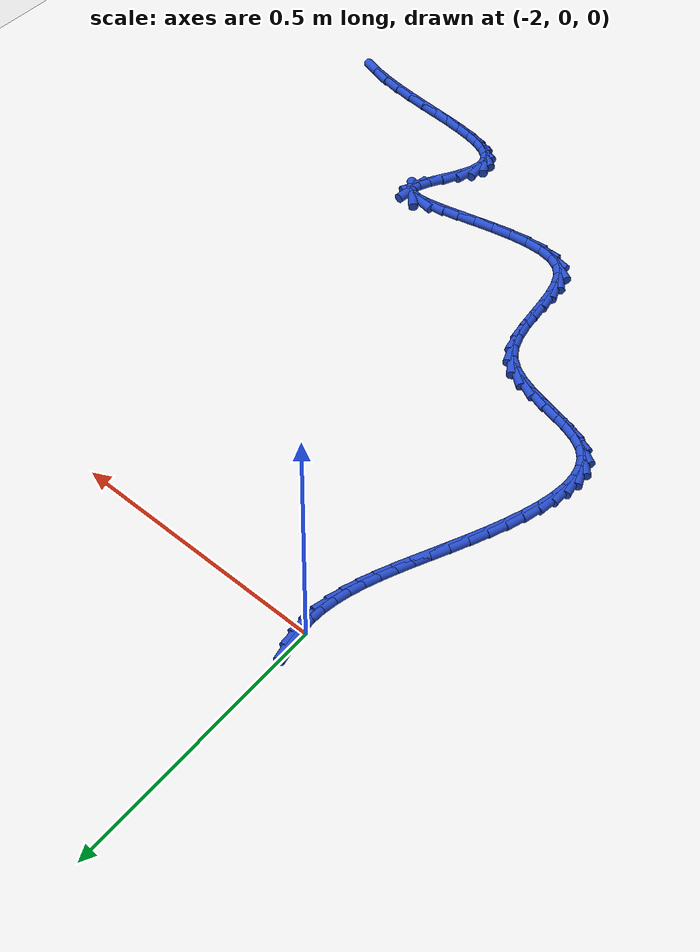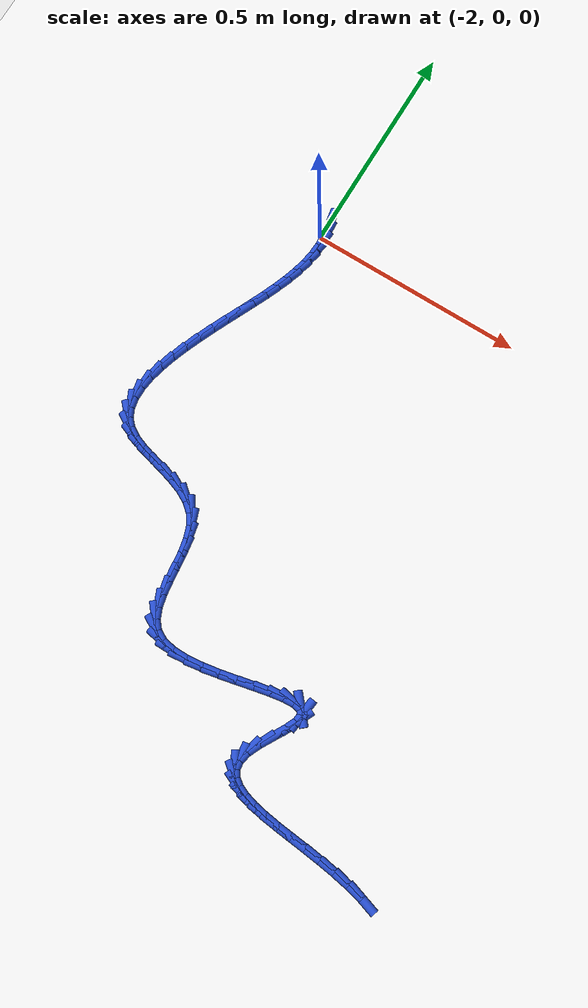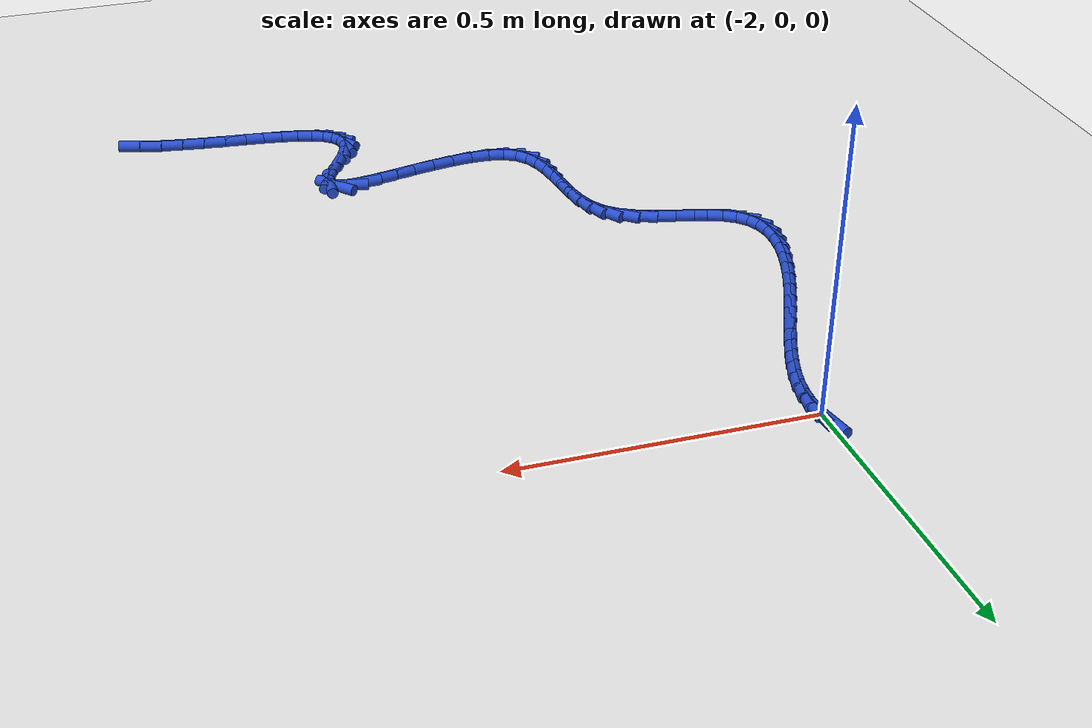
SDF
<sdf version="1.6">
 <world name="default">
  <model name="ground_plane">
   <static>1</static>
   <link name="link">
    <collision name="collision">
     <geometry><plane><normal>0 0 1</normal><size>100 100</size></plane></geometry>
     <surface><friction><ode><mu>100</mu><mu2>50</mu2></ode></friction></surface>
    </collision>
    <visual name="visual">
     <cast_shadows>0</cast_shadows>
     <geometry><plane><normal>0 0 1</normal><size>100 100</size></plane></geometry>
     <material>
      <script><uri>file://media/materials/scripts/gazebo.material</uri><name>Gazebo/WhiteGlow</name></script>
     </material>
    </visual>
   </link>
  </model>
  <model name="line">
   <link name="link_143">
    <pose>-1.9962763031443065 0.031514591158086844 0.01 0 1.57 -1.3799624518939744</pose>
    <collision name="collision">
     <geometry><cylinder><radius>0.01</radius><length>0.08</length></cylinder></geometry>
    </collision>
    <visual name="visual">
     <material>
      <script><name>Gazebo/Blue</name><uri>file://media/materials/scripts/gazebo.material</uri></script>
     </material>
     <geometry><cylinder><radius>0.01</radius><length>0.08</length></cylinder></geometry>
    </visual>
   </link>
   <link name="link_144">
    <pose>-1.9912921864584656 0.005714841771516518 0.01 0 1.57 -1.5122111269956504</pose>
    <collision name="collision">
     <geometry><cylinder><radius>0.01</radius><length>0.08</length></cylinder></geometry>
    </collision>
    <visual name="visual">
     <material>
      <script><name>Gazebo/Blue</name><uri>file://media/materials/scripts/gazebo.material</uri></script>
     </material>
     <geometry><cylinder><radius>0.01</radius><length>0.08</length></cylinder></geometry>
    </visual>
   </link>
   <link name="link_145">
    <pose>-1.9897640528298925 -0.020339262914148108 0.01 0 1.57 1.5102431524342177</pose>
    <collision name="collision">
     <geometry><cylinder><radius>0.01</radius><length>0.08</length></cylinder></geometry>
    </collision>
    <visual name="visual">
     <material>
      <script><name>Gazebo/Blue</name><uri>file://media/materials/scripts/gazebo.material</uri></script>
     </material>
     <geometry><cylinder><radius>0.01</radius><length>0.08</length></cylinder></geometry>
    </visual>
   </link>
   <link name="link_146">
    <pose>-1.9913635400704 -0.04672155979089934 0.01 0 1.57 1.4080209900042377</pose>
    <collision name="collision">
     <geometry><cylinder><radius>0.01</radius><length>0.08</length></cylinder></geometry>
    </collision>
    <visual name="visual">
     <material>
      <script><name>Gazebo/Blue</name><uri>file://media/materials/scripts/gazebo.material</uri></script>
     </material>
     <geometry><cylinder><radius>0.01</radius><length>0.08</length></cylinder></geometry>
    </visual>
   </link>
   <link name="link_147">
    <pose>-1.9957622859917983 -0.073505885750727 0.01 0 1.57 1.323933644253018</pose>
    <collision name="collision">
     <geometry><cylinder><radius>0.01</radius><length>0.08</length></cylinder></geometry>
    </collision>
    <visual name="visual">
     <material>
      <script><name>Gazebo/Blue</name><uri>file://media/materials/scripts/gazebo.material</uri></script>
     </material>
     <geometry><cylinder><radius>0.01</radius><length>0.08</length></cylinder></geometry>
    </visual>
   </link>
   <link name="link_148">
    <pose>-2.0026319284059 -0.10076607768562347 0.01 0 1.57 1.2574115343491388</pose>
    <collision name="collision">
     <geometry><cylinder><radius>0.01</radius><length>0.08</length></cylinder></geometry>
    </collision>
    <visual name="visual">
     <material>
      <script><name>Gazebo/Blue</name><uri>file://media/materials/scripts/gazebo.material</uri></script>
     </material>
     <geometry><cylinder><radius>0.01</radius><length>0.08</length></cylinder></geometry>
    </visual>
   </link>
   <link name="link_149">
    <pose>-2.0116441051245166 -0.12857597248758018 0.01 0 1.57 1.2069843277178944</pose>
    <collision name="collision">
     <geometry><cylinder><radius>0.01</radius><length>0.08</length></cylinder></geometry>
    </collision>
    <visual name="visual">
     <material>
      <script><name>Gazebo/Blue</name><uri>file://media/materials/scripts/gazebo.material</uri></script>
     </material>
     <geometry><cylinder><radius>0.01</radius><length>0.08</length></cylinder></geometry>
    </visual>
   </link>
   <link name="link_150">
    <pose>-2.02247045395946 -0.15700940704858868 0.01 0 1.57 1.170917209728556</pose>
    <collision name="collision">
     <geometry><cylinder><radius>0.01</radius><length>0.08</length></cylinder></geometry>
    </collision>
    <visual name="visual">
     <material>
      <script><name>Gazebo/Blue</name><uri>file://media/materials/scripts/gazebo.material</uri></script>
     </material>
     <geometry><cylinder><radius>0.01</radius><length>0.08</length></cylinder></geometry>
    </visual>
   </link>
   <link name="link_151">
    <pose>-2.034782612722541 -0.18614021826064045 0.01 0 1.57 1.147561586208824</pose>
    <collision name="collision">
     <geometry><cylinder><radius>0.01</radius><length>0.08</length></cylinder></geometry>
    </collision>
    <visual name="visual">
     <material>
      <script><name>Gazebo/Blue</name><uri>file://media/materials/scripts/gazebo.material</uri></script>
     </material>
     <geometry><cylinder><radius>0.01</radius><length>0.08</length></cylinder></geometry>
    </visual>
   </link>
   <link name="link_152">
    <pose>-2.048252219225572 -0.216042243015727 0.01 0 1.57 1.1355038349042812</pose>
    <collision name="collision">
     <geometry><cylinder><radius>0.01</radius><length>0.08</length></cylinder></geometry>
    </collision>
    <visual name="visual">
     <material>
      <script><name>Gazebo/Blue</name><uri>file://media/materials/scripts/gazebo.material</uri></script>
     </material>
     <geometry><cylinder><radius>0.01</radius><length>0.08</length></cylinder></geometry>
    </visual>
   </link>
   <link name="link_153">
    <pose>-2.0625509112803644 -0.24678931820583977 0.01 0 1.57 1.1335996855342239</pose>
    <collision name="collision">
     <geometry><cylinder><radius>0.01</radius><length>0.08</length></cylinder></geometry>
    </collision>
    <visual name="visual">
     <material>
      <script><name>Gazebo/Blue</name><uri>file://media/materials/scripts/gazebo.material</uri></script>
     </material>
     <geometry><cylinder><radius>0.01</radius><length>0.08</length></cylinder></geometry>
    </visual>
   </link>
   <link name="link_154">
    <pose>-2.07735032669873 -0.2784552807229702 0.01 0 1.57 1.1409576209304424</pose>
    <collision name="collision">
     <geometry><cylinder><radius>0.01</radius><length>0.08</length></cylinder></geometry>
    </collision>
    <visual name="visual">
     <material>
      <script><name>Gazebo/Blue</name><uri>file://media/materials/scripts/gazebo.material</uri></script>
     </material>
     <geometry><cylinder><radius>0.01</radius><length>0.08</length></cylinder></geometry>
    </visual>
   </link>
   <link name="link_155">
    <pose>-2.0923188348650394 -0.31110725530592764 0.01 0 1.57 1.157192149093695</pose>
    <collision name="collision">
     <geometry><cylinder><radius>0.01</radius><length>0.08</length></cylinder></geometry>
    </collision>
    <visual name="visual">
     <material>
      <script><name>Gazebo/Blue</name><uri>file://media/materials/scripts/gazebo.material</uri></script>
     </material>
     <geometry><cylinder><radius>0.01</radius><length>0.08</length></cylinder></geometry>
    </visual>
   </link>
   <link name="link_156">
    <pose>-2.1070028865285737 -0.34456199045925107 0.01 0 1.57 1.1829414277970234</pose>
    <collision name="collision">
     <geometry><cylinder><radius>0.01</radius><length>0.08</length></cylinder></geometry>
    </collision>
    <visual name="visual">
     <material>
      <script><name>Gazebo/Blue</name><uri>file://media/materials/scripts/gazebo.material</uri></script>
     </material>
     <geometry><cylinder><radius>0.01</radius><length>0.08</length></cylinder></geometry>
    </visual>
   </link>
   <link name="link_157">
    <pose>-2.1207934676672737 -0.378316966972747 0.01 0 1.57 1.2197999441622005</pose>
    <collision name="collision">
     <geometry><cylinder><radius>0.01</radius><length>0.08</length></cylinder></geometry>
    </collision>
    <visual name="visual">
     <material>
      <script><name>Gazebo/Blue</name><uri>file://media/materials/scripts/gazebo.material</uri></script>
     </material>
     <geometry><cylinder><radius>0.01</radius><length>0.08</length></cylinder></geometry>
    </visual>
   </link>
   <link name="link_158">
    <pose>-2.133071462101328 -0.4118489195032418 0.01 0 1.57 1.2706711342199997</pose>
    <collision name="collision">
     <geometry><cylinder><radius>0.01</radius><length>0.08</length></cylinder></geometry>
    </collision>
    <visual name="visual">
     <material>
      <script><name>Gazebo/Blue</name><uri>file://media/materials/scripts/gazebo.material</uri></script>
     </material>
     <geometry><cylinder><radius>0.01</radius><length>0.08</length></cylinder></geometry>
    </visual>
   </link>
   <link name="link_159">
    <pose>-2.143217753650927 -0.44463458270756195 0.01 0 1.57 1.340309530448115</pose>
    <collision name="collision">
     <geometry><cylinder><radius>0.01</radius><length>0.08</length></cylinder></geometry>
    </collision>
    <visual name="visual">
     <material>
      <script><name>Gazebo/Blue</name><uri>file://media/materials/scripts/gazebo.material</uri></script>
     </material>
     <geometry><cylinder><radius>0.01</radius><length>0.08</length></cylinder></geometry>
    </visual>
   </link>
   <link name="link_160">
    <pose>-2.1506132261362576 -0.47615069124253406 0.01 0 1.57 1.4361816100632319</pose>
    <collision name="collision">
     <geometry><cylinder><radius>0.01</radius><length>0.08</length></cylinder></geometry>
    </collision>
    <visual name="visual">
     <material>
      <script><name>Gazebo/Blue</name><uri>file://media/materials/scripts/gazebo.material</uri></script>
     </material>
     <geometry><cylinder><radius>0.01</radius><length>0.08</length></cylinder></geometry>
    </visual>
   </link>
   <link name="link_161">
    <pose>-2.15463876337751 -0.5058739797649842 0.01 0 1.57 1.5694650783787067</pose>
    <collision name="collision">
     <geometry><cylinder><radius>0.01</radius><length>0.08</length></cylinder></geometry>
    </collision>
    <visual name="visual">
     <material>
      <script><name>Gazebo/Blue</name><uri>file://media/materials/scripts/gazebo.material</uri></script>
     </material>
     <geometry><cylinder><radius>0.01</radius><length>0.08</length></cylinder></geometry>
    </visual>
   </link>
   <link name="link_162">
    <pose>-2.1546752491948715 -0.5332811829317391 0.01 0 1.57 -1.3868167335781936</pose>
    <collision name="collision">
     <geometry><cylinder><radius>0.01</radius><length>0.08</length></cylinder></geometry>
    </collision>
    <visual name="visual">
     <material>
      <script><name>Gazebo/Blue</name><uri>file://media/materials/scripts/gazebo.material</uri></script>
     </material>
     <geometry><cylinder><radius>0.01</radius><length>0.08</length></cylinder></geometry>
    </visual>
   </link>
   <link name="link_163">
    <pose>-2.1501035674085323 -0.557849035399625 0.01 0 1.57 -1.1379247200459208</pose>
    <collision name="collision">
     <geometry><cylinder><radius>0.01</radius><length>0.08</length></cylinder></geometry>
    </collision>
    <visual name="visual">
     <material>
      <script><name>Gazebo/Blue</name><uri>file://media/materials/scripts/gazebo.material</uri></script>
     </material>
     <geometry><cylinder><radius>0.01</radius><length>0.08</length></cylinder></geometry>
    </visual>
   </link>
   <link name="link_164">
    <pose>-2.1403046018386798 -0.5790542718254692 0.01 0 1.57 -0.8361602571646246</pose>
    <collision name="collision">
     <geometry><cylinder><radius>0.01</radius><length>0.08</length></cylinder></geometry>
    </collision>
    <visual name="visual">
     <material>
      <script><name>Gazebo/Blue</name><uri>file://media/materials/scripts/gazebo.material</uri></script>
     </material>
     <geometry><cylinder><radius>0.01</radius><length>0.08</length></cylinder></geometry>
    </visual>
   </link>
   <link name="link_165">
    <pose>-2.1246596822382173 -0.5963739839282473 0.01 0 1.57 -0.5518134535876208</pose>
    <collision name="collision">
     <geometry><cylinder><radius>0.01</radius><length>0.08</length></cylinder></geometry>
    </collision>
    <visual name="visual">
     <material>
      <script><name>Gazebo/Blue</name><uri>file://media/materials/scripts/gazebo.material</uri></script>
     </material>
     <geometry><cylinder><radius>0.01</radius><length>0.08</length></cylinder></geometry>
    </visual>
   </link>
   <link name="link_166">
    <pose>-2.103043973653063 -0.6096806815842879 0.01 0 1.57 -0.37421000908732027</pose>
    <collision name="collision">
     <geometry><cylinder><radius>0.01</radius><length>0.08</length></cylinder></geometry>
    </collision>
    <visual name="visual">
     <material>
      <script><name>Gazebo/Blue</name><uri>file://media/materials/scripts/gazebo.material</uri></script>
     </material>
     <geometry><cylinder><radius>0.01</radius><length>0.08</length></cylinder></geometry>
    </visual>
   </link>
   <link name="link_167">
    <pose>-2.076770897299272 -0.6199984987288609 0.01 0 1.57 -0.28376980396767204</pose>
    <collision name="collision">
     <geometry><cylinder><radius>0.01</radius><length>0.08</length></cylinder></geometry>
    </collision>
    <visual name="visual">
     <material>
      <script><name>Gazebo/Blue</name><uri>file://media/materials/scripts/gazebo.material</uri></script>
     </material>
     <geometry><cylinder><radius>0.01</radius><length>0.08</length></cylinder></geometry>
    </visual>
   </link>
   <link name="link_168">
    <pose>-2.047414273524552 -0.62856007311677 0.01 0 1.57 -0.2547539694324992</pose>
    <collision name="collision">
     <geometry><cylinder><radius>0.01</radius><length>0.08</length></cylinder></geometry>
    </collision>
    <visual name="visual">
     <material>
      <script><name>Gazebo/Blue</name><uri>file://media/materials/scripts/gazebo.material</uri></script>
     </material>
     <geometry><cylinder><radius>0.01</radius><length>0.08</length></cylinder></geometry>
    </visual>
   </link>
   <link name="link_169">
    <pose>-2.0165479226766103 -0.6365980425028173 0.01 0 1.57 -0.2766888308140119</pose>
    <collision name="collision">
     <geometry><cylinder><radius>0.01</radius><length>0.08</length></cylinder></geometry>
    </collision>
    <visual name="visual">
     <material>
      <script><name>Gazebo/Blue</name><uri>file://media/materials/scripts/gazebo.material</uri></script>
     </material>
     <geometry><cylinder><radius>0.01</radius><length>0.08</length></cylinder></geometry>
    </visual>
   </link>
   <link name="link_170">
    <pose>-1.9857456651031558 -0.6453450446418062 0.01 0 1.57 -0.3512960754035963</pose>
    <collision name="collision">
     <geometry><cylinder><radius>0.01</radius><length>0.08</length></cylinder></geometry>
    </collision>
    <visual name="visual">
     <material>
      <script><name>Gazebo/Blue</name><uri>file://media/materials/scripts/gazebo.material</uri></script>
     </material>
     <geometry><cylinder><radius>0.01</radius><length>0.08</length></cylinder></geometry>
    </visual>
   </link>
   <link name="link_171">
    <pose>-1.9565813211518959 -0.6560337172885393 0.01 0 1.57 -0.4906047438406072</pose>
    <collision name="collision">
     <geometry><cylinder><radius>0.01</radius><length>0.08</length></cylinder></geometry>
    </collision>
    <visual name="visual">
     <material>
      <script><name>Gazebo/Blue</name><uri>file://media/materials/scripts/gazebo.material</uri></script>
     </material>
     <geometry><cylinder><radius>0.01</radius><length>0.08</length></cylinder></geometry>
    </visual>
   </link>
   <link name="link_172">
    <pose>-1.9306287111705374 -0.6698966981978194 0.01 0 1.57 -0.7120676570184888</pose>
    <collision name="collision">
     <geometry><cylinder><radius>0.01</radius><length>0.08</length></cylinder></geometry>
    </collision>
    <visual name="visual">
     <material>
      <script><name>Gazebo/Blue</name><uri>file://media/materials/scripts/gazebo.material</uri></script>
     </material>
     <geometry><cylinder><radius>0.01</radius><length>0.08</length></cylinder></geometry>
    </visual>
   </link>
   <link name="link_173">
    <pose>-1.9094616555067896 -0.6881666251244506 0.01 0 1.57 -0.9996607174795227</pose>
    <collision name="collision">
     <geometry><cylinder><radius>0.01</radius><length>0.08</length></cylinder></geometry>
    </collision>
    <visual name="visual">
     <material>
      <script><name>Gazebo/Blue</name><uri>file://media/materials/scripts/gazebo.material</uri></script>
     </material>
     <geometry><cylinder><radius>0.01</radius><length>0.08</length></cylinder></geometry>
    </visual>
   </link>
   <link name="link_174">
    <pose>-1.8942967705728366 -0.7117669184592839 0.01 0 1.57 -1.2301454766727267</pose>
    <collision name="collision">
     <geometry><cylinder><radius>0.01</radius><length>0.08</length></cylinder></geometry>
    </collision>
    <visual name="visual">
     <material>
      <script><name>Gazebo/Blue</name><uri>file://media/materials/scripts/gazebo.material</uri></script>
     </material>
     <geometry><cylinder><radius>0.01</radius><length>0.08</length></cylinder></geometry>
    </visual>
   </link>
   <link name="link_175">
    <pose>-1.8843334114611496 -0.7398747350007299 0.01 0 1.57 -1.372355714762874</pose>
    <collision name="collision">
     <geometry><cylinder><radius>0.01</radius><length>0.08</length></cylinder></geometry>
    </collision>
    <visual name="visual">
     <material>
      <script><name>Gazebo/Blue</name><uri>file://media/materials/scripts/gazebo.material</uri></script>
     </material>
     <geometry><cylinder><radius>0.01</radius><length>0.08</length></cylinder></geometry>
    </visual>
   </link>
   <link name="link_176">
    <pose>-1.8780634968042595 -0.7710548316950403 0.01 0 1.57 -1.4469437512029955</pose>
    <collision name="collision">
     <geometry><cylinder><radius>0.01</radius><length>0.08</length></cylinder></geometry>
    </collision>
    <visual name="visual">
     <material>
      <script><name>Gazebo/Blue</name><uri>file://media/materials/scripts/gazebo.material</uri></script>
     </material>
     <geometry><cylinder><radius>0.01</radius><length>0.08</length></cylinder></geometry>
    </visual>
   </link>
   <link name="link_177">
    <pose>-1.8739781818689565 -0.8038713046728416 0.01 0 1.57 -1.467894106624035</pose>
    <collision name="collision">
     <geometry><cylinder><radius>0.01</radius><length>0.08</length></cylinder></geometry>
    </collision>
    <visual name="visual">
     <material>
      <script><name>Gazebo/Blue</name><uri>file://media/materials/scripts/gazebo.material</uri></script>
     </material>
     <geometry><cylinder><radius>0.01</radius><length>0.08</length></cylinder></geometry>
    </visual>
   </link>
   <link name="link_178">
    <pose>-1.8705686219220325 -0.8368882500647602 0.01 0 1.57 -1.4380866818928286</pose>
    <collision name="collision">
     <geometry><cylinder><radius>0.01</radius><length>0.08</length></cylinder></geometry>
    </collision>
    <visual name="visual">
     <material>
      <script><name>Gazebo/Blue</name><uri>file://media/materials/scripts/gazebo.material</uri></script>
     </material>
     <geometry><cylinder><radius>0.01</radius><length>0.08</length></cylinder></geometry>
    </visual>
   </link>
   <link name="link_179">
    <pose>-1.866325972230277 -0.8686697640014217 0.01 0 1.57 -1.3483445185715626</pose>
    <collision name="collision">
     <geometry><cylinder><radius>0.01</radius><length>0.08</length></cylinder></geometry>
    </collision>
    <visual name="visual">
     <material>
      <script><name>Gazebo/Blue</name><uri>file://media/materials/scripts/gazebo.material</uri></script>
     </material>
     <geometry><cylinder><radius>0.01</radius><length>0.08</length></cylinder></geometry>
    </visual>
   </link>
   <link name="link_180">
    <pose>-1.8597413880604812 -0.8977799426134527 0.01 0 1.57 -1.1754099309429213</pose>
    <collision name="collision">
     <geometry><cylinder><radius>0.01</radius><length>0.08</length></cylinder></geometry>
    </collision>
    <visual name="visual">
     <material>
      <script><name>Gazebo/Blue</name><uri>file://media/materials/scripts/gazebo.material</uri></script>
     </material>
     <geometry><cylinder><radius>0.01</radius><length>0.08</length></cylinder></geometry>
    </visual>
   </link>
   <link name="link_181">
    <pose>-1.849306024679435 -0.9227828820314801 0.01 0 1.57 -0.8889782421730252</pose>
    <collision name="collision">
     <geometry><cylinder><radius>0.01</radius><length>0.08</length></cylinder></geometry>
    </collision>
    <visual name="visual">
     <material>
      <script><name>Gazebo/Blue</name><uri>file://media/materials/scripts/gazebo.material</uri></script>
     </material>
     <geometry><cylinder><radius>0.01</radius><length>0.08</length></cylinder></geometry>
    </visual>
   </link>
   <link name="link_182">
    <pose>-1.8335110373539292 -0.9422426783861282 0.01 0 1.57 -0.5085805689242043</pose>
    <collision name="collision">
     <geometry><cylinder><radius>0.01</radius><length>0.08</length></cylinder></geometry>
    </collision>
    <visual name="visual">
     <material>
      <script><name>Gazebo/Blue</name><uri>file://media/materials/scripts/gazebo.material</uri></script>
     </material>
     <geometry><cylinder><radius>0.01</radius><length>0.08</length></cylinder></geometry>
    </visual>
   </link>
   <link name="link_183">
    <pose>-1.8109538105990413 -0.9548182566691358 0.01 0 1.57 -0.19739380855250294</pose>
    <collision name="collision">
     <geometry><cylinder><radius>0.01</radius><length>0.08</length></cylinder></geometry>
    </collision>
    <visual name="visual">
     <material>
      <script><name>Gazebo/Blue</name><uri>file://media/materials/scripts/gazebo.material</uri></script>
     </material>
     <geometry><cylinder><radius>0.01</radius><length>0.08</length></cylinder></geometry>
    </visual>
   </link>
   <link name="link_184">
    <pose>-1.7818736333001957 -0.9606342391637637 0.01 0 1.57 -0.00979403591884324</pose>
    <collision name="collision">
     <geometry><cylinder><radius>0.01</radius><length>0.08</length></cylinder></geometry>
    </collision>
    <visual name="visual">
     <material>
      <script><name>Gazebo/Blue</name><uri>file://media/materials/scripts/gazebo.material</uri></script>
     </material>
     <geometry><cylinder><radius>0.01</radius><length>0.08</length></cylinder></geometry>
    </visual>
   </link>
   <link name="link_185">
    <pose>-1.747801083281277 -0.9609679576130042 0.01 0 1.57 0.10204873533520765</pose>
    <collision name="collision">
     <geometry><cylinder><radius>0.01</radius><length>0.08</length></cylinder></geometry>
    </collision>
    <visual name="visual">
     <material>
      <script><name>Gazebo/Blue</name><uri>file://media/materials/scripts/gazebo.material</uri></script>
     </material>
     <geometry><cylinder><radius>0.01</radius><length>0.08</length></cylinder></geometry>
    </visual>
   </link>
   <link name="link_186">
    <pose>-1.7103015736435176 -0.9571278405597501 0.01 0 1.57 0.1687393946362979</pose>
    <collision name="collision">
     <geometry><cylinder><radius>0.01</radius><length>0.08</length></cylinder></geometry>
    </collision>
    <visual name="visual">
     <material>
      <script><name>Gazebo/Blue</name><uri>file://media/materials/scripts/gazebo.material</uri></script>
     </material>
     <geometry><cylinder><radius>0.01</radius><length>0.08</length></cylinder></geometry>
    </visual>
   </link>
   <link name="link_187">
    <pose>-1.670940517488151 -0.9504223165468934 0.01 0 1.57 0.20540959789294716</pose>
    <collision name="collision">
     <geometry><cylinder><radius>0.01</radius><length>0.08</length></cylinder></geometry>
    </collision>
    <visual name="visual">
     <material>
      <script><name>Gazebo/Blue</name><uri>file://media/materials/scripts/gazebo.material</uri></script>
     </material>
     <geometry><cylinder><radius>0.01</radius><length>0.08</length></cylinder></geometry>
    </visual>
   </link>
   <link name="link_188">
    <pose>-1.6312833279164116 -0.9421598141173277 0.01 0 1.57 0.21818248363233964</pose>
    <collision name="collision">
     <geometry><cylinder><radius>0.01</radius><length>0.08</length></cylinder></geometry>
    </collision>
    <visual name="visual">
     <material>
      <script><name>Gazebo/Blue</name><uri>file://media/materials/scripts/gazebo.material</uri></script>
     </material>
     <geometry><cylinder><radius>0.01</radius><length>0.08</length></cylinder></geometry>
    </visual>
   </link>
   <link name="link_189">
    <pose>-1.5928954180295318 -0.9336487618139456 0.01 0 1.57 0.20658802452402725</pose>
    <collision name="collision">
     <geometry><cylinder><radius>0.01</radius><length>0.08</length></cylinder></geometry>
    </collision>
    <visual name="visual">
     <material>
      <script><name>Gazebo/Blue</name><uri>file://media/materials/scripts/gazebo.material</uri></script>
     </material>
     <geometry><cylinder><radius>0.01</radius><length>0.08</length></cylinder></geometry>
    </visual>
   </link>
   <link name="link_190">
    <pose>-1.5573422009287443 -0.9261975881796393 0.01 0 1.57 0.16173250612039045</pose>
    <collision name="collision">
     <geometry><cylinder><radius>0.01</radius><length>0.08</length></cylinder></geometry>
    </collision>
    <visual name="visual">
     <material>
      <script><name>Gazebo/Blue</name><uri>file://media/materials/scripts/gazebo.material</uri></script>
     </material>
     <geometry><cylinder><radius>0.01</radius><length>0.08</length></cylinder></geometry>
    </visual>
   </link>
   <link name="link_191">
    <pose>-1.5261890897152852 -0.9211147217573024 0.01 0 1.57 0.05576843583494604</pose>
    <collision name="collision">
     <geometry><cylinder><radius>0.01</radius><length>0.08</length></cylinder></geometry>
    </collision>
    <visual name="visual">
     <material>
      <script><name>Gazebo/Blue</name><uri>file://media/materials/scripts/gazebo.material</uri></script>
     </material>
     <geometry><cylinder><radius>0.01</radius><length>0.08</length></cylinder></geometry>
    </visual>
   </link>
   <link name="link_192">
    <pose>-1.5010014974903865 -0.9197085910898274 0.01 0 1.57 -0.1999919175645162</pose>
    <collision name="collision">
     <geometry><cylinder><radius>0.01</radius><length>0.08</length></cylinder></geometry>
    </collision>
    <visual name="visual">
     <material>
      <script><name>Gazebo/Blue</name><uri>file://media/materials/scripts/gazebo.material</uri></script>
     </material>
     <geometry><cylinder><radius>0.01</radius><length>0.08</length></cylinder></geometry>
    </visual>
   </link>
   <link name="link_193">
    <pose>-1.4833448373552816 -0.923287624720107 0.01 0 1.57 -0.8564720652318792</pose>
    <collision name="collision">
     <geometry><cylinder><radius>0.01</radius><length>0.08</length></cylinder></geometry>
    </collision>
    <visual name="visual">
     <material>
      <script><name>Gazebo/Blue</name><uri>file://media/materials/scripts/gazebo.material</uri></script>
     </material>
     <geometry><cylinder><radius>0.01</radius><length>0.08</length></cylinder></geometry>
    </visual>
   </link>
   <link name="link_194">
    <pose>-1.474784522411204 -0.933160251191034 0.01 0 1.57 1.458814359932251</pose>
    <collision name="collision">
     <geometry><cylinder><radius>0.01</radius><length>0.08</length></cylinder></geometry>
    </collision>
    <visual name="visual">
     <material>
      <script><name>Gazebo/Blue</name><uri>file://media/materials/scripts/gazebo.material</uri></script>
     </material>
     <geometry><cylinder><radius>0.01</radius><length>0.08</length></cylinder></geometry>
    </visual>
   </link>
   <link name="link_195">
    <pose>-1.4767378947663468 -0.9505309092042227 0.01 0 1.57 1.142647901584952</pose>
    <collision name="collision">
     <geometry><cylinder><radius>0.01</radius><length>0.08</length></cylinder></geometry>
    </collision>
    <visual name="visual">
     <material>
      <script><name>Gazebo/Blue</name><uri>file://media/materials/scripts/gazebo.material</uri></script>
     </material>
     <geometry><cylinder><radius>0.01</radius><length>0.08</length></cylinder></geometry>
    </visual>
   </link>
   <link name="link_196">
    <pose>-1.4877008191369938 -0.9745522921191121 0.01 0 1.57 1.0564144343552526</pose>
    <collision name="collision">
     <geometry><cylinder><radius>0.01</radius><length>0.08</length></cylinder></geometry>
    </collision>
    <visual name="visual">
     <material>
      <script><name>Gazebo/Blue</name><uri>file://media/materials/scripts/gazebo.material</uri></script>
     </material>
     <geometry><cylinder><radius>0.01</radius><length>0.08</length></cylinder></geometry>
    </visual>
   </link>
   <link name="link_197">
    <pose>-1.5034937501738161 -1.0024981603430188 0.01 0 1.57 1.0586656711485776</pose>
    <collision name="collision">
     <geometry><cylinder><radius>0.01</radius><length>0.08</length></cylinder></geometry>
    </collision>
    <visual name="visual">
     <material>
      <script><name>Gazebo/Blue</name><uri>file://media/materials/scripts/gazebo.material</uri></script>
     </material>
     <geometry><cylinder><radius>0.01</radius><length>0.08</length></cylinder></geometry>
    </visual>
   </link>
   <link name="link_198">
    <pose>-1.5198384044647093 -1.0315729308199308 0.01 0 1.57 1.1393452666268766</pose>
    <collision name="collision">
     <geometry><cylinder><radius>0.01</radius><length>0.08</length></cylinder></geometry>
    </collision>
    <visual name="visual">
     <material>
      <script><name>Gazebo/Blue</name><uri>file://media/materials/scripts/gazebo.material</uri></script>
     </material>
     <geometry><cylinder><radius>0.01</radius><length>0.08</length></cylinder></geometry>
    </visual>
   </link>
   <link name="link_199">
    <pose>-1.532456498597572 -1.0589810204938377 0.01 0 1.57 1.3502671415837089</pose>
    <collision name="collision">
     <geometry><cylinder><radius>0.01</radius><length>0.08</length></cylinder></geometry>
    </collision>
    <visual name="visual">
     <material>
      <script><name>Gazebo/Blue</name><uri>file://media/materials/scripts/gazebo.material</uri></script>
     </material>
     <geometry><cylinder><radius>0.01</radius><length>0.08</length></cylinder></geometry>
    </visual>
   </link>
   <link name="link_200">
    <pose>-1.5376926962441642 -1.0823386406486217 0.01 0 1.57 -1.4408214587055153</pose>
    <collision name="collision">
     <geometry><cylinder><radius>0.01</radius><length>0.08</length></cylinder></geometry>
    </collision>
    <visual name="visual">
     <material>
      <script><name>Gazebo/Blue</name><uri>file://media/materials/scripts/gazebo.material</uri></script>
     </material>
     <geometry><cylinder><radius>0.01</radius><length>0.08</length></cylinder></geometry>
    </visual>
   </link>
   <link name="link_201">
    <pose>-1.535195170837605 -1.1014457620828233 0.01 0 1.57 -1.0177752878961768</pose>
    <collision name="collision">
     <geometry><cylinder><radius>0.01</radius><length>0.08</length></cylinder></geometry>
    </collision>
    <visual name="visual">
     <material>
      <script><name>Gazebo/Blue</name><uri>file://media/materials/scripts/gazebo.material</uri></script>
     </material>
     <geometry><cylinder><radius>0.01</radius><length>0.08</length></cylinder></geometry>
    </visual>
   </link>
   <link name="link_202">
    <pose>-1.5257029769719002 -1.1168234741284615 0.01 0 1.57 -0.6579527122004845</pose>
    <collision name="collision">
     <geometry><cylinder><radius>0.01</radius><length>0.08</length></cylinder></geometry>
    </collision>
    <visual name="visual">
     <material>
      <script><name>Gazebo/Blue</name><uri>file://media/materials/scripts/gazebo.material</uri></script>
     </material>
     <geometry><cylinder><radius>0.01</radius><length>0.08</length></cylinder></geometry>
    </visual>
   </link>
   <link name="link_203">
    <pose>-1.5099558533760131 -1.1289933183596643 0.01 0 1.57 -0.41954316985825685</pose>
    <collision name="collision">
     <geometry><cylinder><radius>0.01</radius><length>0.08</length></cylinder></geometry>
    </collision>
    <visual name="visual">
     <material>
      <script><name>Gazebo/Blue</name><uri>file://media/materials/scripts/gazebo.material</uri></script>
     </material>
     <geometry><cylinder><radius>0.01</radius><length>0.08</length></cylinder></geometry>
    </visual>
   </link>
   <link name="link_204">
    <pose>-1.4886935387789046 -1.1384768363505597 0.01 0 1.57 -0.274011251583406</pose>
    <collision name="collision">
     <geometry><cylinder><radius>0.01</radius><length>0.08</length></cylinder></geometry>
    </collision>
    <visual name="visual">
     <material>
      <script><name>Gazebo/Blue</name><uri>file://media/materials/scripts/gazebo.material</uri></script>
     </material>
     <geometry><cylinder><radius>0.01</radius><length>0.08</length></cylinder></geometry>
    </visual>
   </link>
   <link name="link_205">
    <pose>-1.462655771909537 -1.1457955696752748 0.01 0 1.57 -0.1865269938914371</pose>
    <collision name="collision">
     <geometry><cylinder><radius>0.01</radius><length>0.08</length></cylinder></geometry>
    </collision>
    <visual name="visual">
     <material>
      <script><name>Gazebo/Blue</name><uri>file://media/materials/scripts/gazebo.material</uri></script>
     </material>
     <geometry><cylinder><radius>0.01</radius><length>0.08</length></cylinder></geometry>
    </visual>
   </link>
   <link name="link_206">
    <pose>-1.432582291496872 -1.1514710599079372 0.01 0 1.57 -0.1356279909416567</pose>
    <collision name="collision">
     <geometry><cylinder><radius>0.01</radius><length>0.08</length></cylinder></geometry>
    </collision>
    <visual name="visual">
     <material>
      <script><name>Gazebo/Blue</name><uri>file://media/materials/scripts/gazebo.material</uri></script>
     </material>
     <geometry><cylinder><radius>0.01</radius><length>0.08</length></cylinder></geometry>
    </visual>
   </link>
   <link name="link_207">
    <pose>-1.3992128362698726 -1.1560248486226752 0.01 0 1.57 -0.10960910590769024</pose>
    <collision name="collision">
     <geometry><cylinder><radius>0.01</radius><length>0.08</length></cylinder></geometry>
    </collision>
    <visual name="visual">
     <material>
      <script><name>Gazebo/Blue</name><uri>file://media/materials/scripts/gazebo.material</uri></script>
     </material>
     <geometry><cylinder><radius>0.01</radius><length>0.08</length></cylinder></geometry>
    </visual>
   </link>
   <link name="link_208">
    <pose>-1.3632871449574986 -1.1599784773936161 0.01 0 1.57 -0.10231203355204671</pose>
    <collision name="collision">
     <geometry><cylinder><radius>0.01</radius><length>0.08</length></cylinder></geometry>
    </collision>
    <visual name="visual">
     <material>
      <script><name>Gazebo/Blue</name><uri>file://media/materials/scripts/gazebo.material</uri></script>
     </material>
     <geometry><cylinder><radius>0.01</radius><length>0.08</length></cylinder></geometry>
    </visual>
   </link>
   <link name="link_209">
    <pose>-1.325544956288715 -1.1638534877948876 0.01 0 1.57 -0.1107772566288787</pose>
    <collision name="collision">
     <geometry><cylinder><radius>0.01</radius><length>0.08</length></cylinder></geometry>
    </collision>
    <visual name="visual">
     <material>
      <script><name>Gazebo/Blue</name><uri>file://media/materials/scripts/gazebo.material</uri></script>
     </material>
     <geometry><cylinder><radius>0.01</radius><length>0.08</length></cylinder></geometry>
    </visual>
   </link>
   <link name="link_210">
    <pose>-1.2867260089924821 -1.1681714214006174 0.01 0 1.57 -0.13409699807167083</pose>
    <collision name="collision">
     <geometry><cylinder><radius>0.01</radius><length>0.08</length></cylinder></geometry>
    </collision>
    <visual name="visual">
     <material>
      <script><name>Gazebo/Blue</name><uri>file://media/materials/scripts/gazebo.material</uri></script>
     </material>
     <geometry><cylinder><radius>0.01</radius><length>0.08</length></cylinder></geometry>
    </visual>
   </link>
   <link name="link_211">
    <pose>-1.2475700417977627 -1.1734538197849333 0.01 0 1.57 -0.17290980034685607</pose>
    <collision name="collision">
     <geometry><cylinder><radius>0.01</radius><length>0.08</length></cylinder></geometry>
    </collision>
    <visual name="visual">
     <material>
      <script><name>Gazebo/Blue</name><uri>file://media/materials/scripts/gazebo.material</uri></script>
     </material>
     <geometry><cylinder><radius>0.01</radius><length>0.08</length></cylinder></geometry>
    </visual>
   </link>
   <link name="link_212">
    <pose>-1.2088167934335186 -1.1802222245219633 0.01 0 1.57 -0.22923449202352003</pose>
    <collision name="collision">
     <geometry><cylinder><radius>0.01</radius><length>0.08</length></cylinder></geometry>
    </collision>
    <visual name="visual">
     <material>
      <script><name>Gazebo/Blue</name><uri>file://media/materials/scripts/gazebo.material</uri></script>
     </material>
     <geometry><cylinder><radius>0.01</radius><length>0.08</length></cylinder></geometry>
    </visual>
   </link>
   <link name="link_213">
    <pose>-1.1712060026287114 -1.1889981771858342 0.01 0 1.57 -0.3064470366874615</pose>
    <collision name="collision">
     <geometry><cylinder><radius>0.01</radius><length>0.08</length></cylinder></geometry>
    </collision>
    <visual name="visual">
     <material>
      <script><name>Gazebo/Blue</name><uri>file://media/materials/scripts/gazebo.material</uri></script>
     </material>
     <geometry><cylinder><radius>0.01</radius><length>0.08</length></cylinder></geometry>
    </visual>
   </link>
  </model>
 </world>
</sdf>
